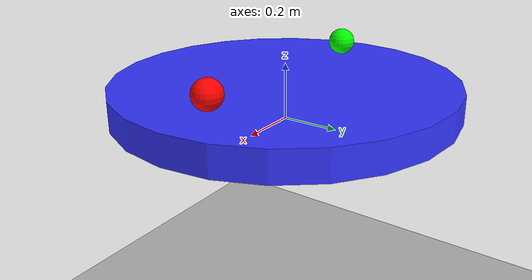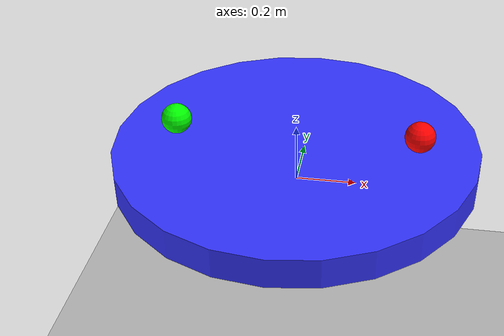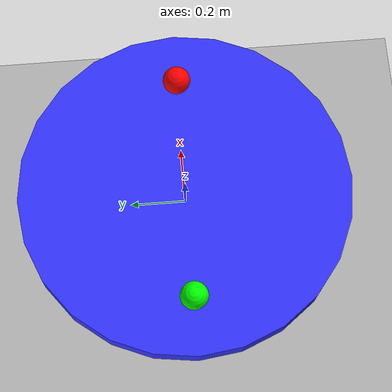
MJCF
<mujoco>
  <option gravity="0 0 -9.81" />
  <worldbody>
    <body name="object_4" pos="0 0 -1">
      <geom type="plane" size="30 30 0.1" rgba="0.7 0.7 0.7 1" />
    </body>
    <body name="object_1" pos="0 0 0.1">
      <geom type="cylinder" size="0.6 0.05" density="0.5" rgba="0.2 0.2 1 1" />
      <joint type="hinge" axis="0 0 1" name="object_1_joint" />
    </body>
    <body name="object_2" pos="0.4 0 0.2">
      <geom type="sphere" size="0.05" density="1" rgba="1 0 0 1" />
    </body>
    <body name="object_3" pos="-0.4 0 0.2">
      <geom type="sphere" size="0.05" density="1" rgba="0 1 0 1" />
    </body>
  </worldbody>
</mujoco>
